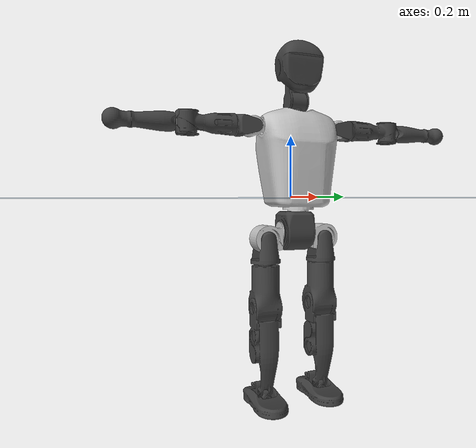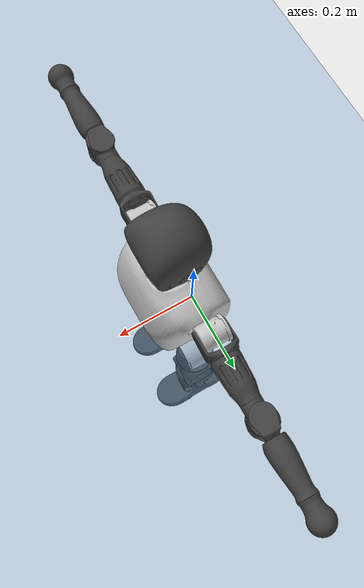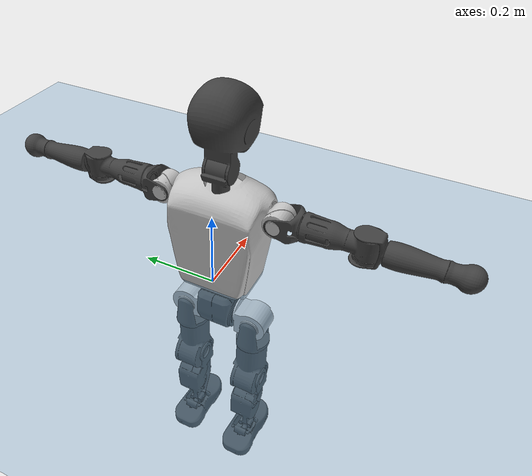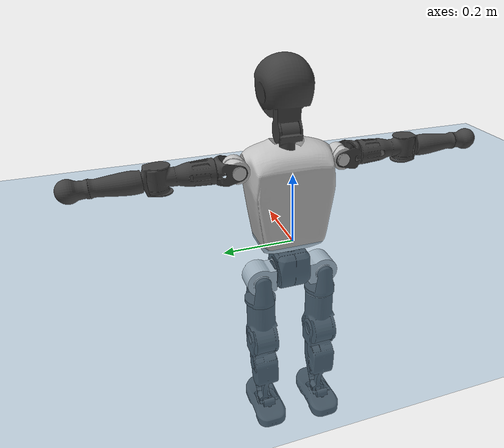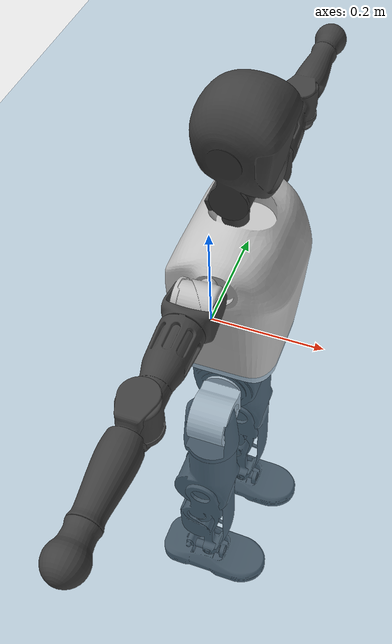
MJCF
<mujoco model="T1">
  <compiler angle="radian" assetdir="assets" balanceinertia="true" inertiafromgeom="false"/>

  <option timestep="0.005" density="1.2" viscosity="2e-05"/>

  <size nkey="1"/>

  <visual>
    <quality shadowsize="8192"/>
    <map shadowclip="0.5"/>
  </visual>

  <default>
    <default class="/">
      <joint armature="0.01" damping="0.01" frictionloss="0.1"/>
      <geom contype="0" conaffinity="0" group="1" solref="-1000 -80"/>
      <site size="0.01 0.005 0.005" group="5"/>
      <general forcelimited="true" biastype="affine" gainprm="25" biasprm="0 -25 -0.6"/>
      <default class="t1">
        <geom rgba="0.25 0.25 0.25 1"/>
        <default class="visual">
          <geom type="mesh" group="2"/>
        </default>
        <default class="collision">
          <geom group="3"/>
        </default>
        <default class="foot">
          <geom size="0.1115 0.05 0.015" type="box" condim="6" group="4" priority="1" solimp="0.015 1 0.015"/>
        </default>
        <default class="reward_collision_sphere">
          <geom group="5" rgba="1 0 0 1"/>
        </default>
      </default>
    </default>
  </default>

  <asset>
    <texture type="skybox" colorspace="auto" name="//unnamed_texture_0" builtin="gradient" rgb1="0.95 0.95 0.95" rgb2="0.95 0.95 0.95" width="100" height="600"/>
    <texture type="2d" colorspace="auto" name="texplane" builtin="checker" rgb1="0.345 0.575 0.748" rgb2="0.345 0.575 0.748" markrgb="1 1 1" width="512" height="512"/>
    <material name="MatPlane" class="/" texture="texplane" texuniform="true" texrepeat="2 2" specular="0.9"/>
    <mesh name="Trunk" class="/" file="Trunk.stl"/>
    <mesh name="H1" class="/" file="H1.stl"/>
    <mesh name="H2" class="/" file="H2.stl"/>
    <mesh name="AL1" class="/" file="AL1.stl"/>
    <mesh name="AL2" class="/" file="AL2.stl"/>
    <mesh name="AL3" class="/" file="AL3.stl"/>
    <mesh name="left_hand_link" class="/" file="left_hand_link.stl"/>
    <mesh name="AR1" class="/" file="AR1.stl"/>
    <mesh name="AR2" class="/" file="AR2.stl"/>
    <mesh name="AR3" class="/" file="AR3.stl"/>
    <mesh name="right_hand_link" class="/" file="right_hand_link.stl"/>
    <mesh name="Waist" class="/" file="Waist.stl"/>
    <mesh name="Hip_Pitch_Left" class="/" file="Hip_Pitch_Left.stl"/>
    <mesh name="Hip_Roll_Left" class="/" file="Hip_Roll_Left.stl"/>
    <mesh name="Hip_Yaw_Left" class="/" file="Hip_Yaw_Left.stl"/>
    <mesh name="Shank_Left" class="/" file="Shank_Left.stl"/>
    <mesh name="Ankle_Cross_Left" class="/" file="Ankle_Cross_Left.stl"/>
    <mesh name="left_foot_link" class="/" file="left_foot_link.stl"/>
    <mesh name="Hip_Pitch_Right" class="/" file="Hip_Pitch_Right.stl"/>
    <mesh name="Hip_Roll_Right" class="/" file="Hip_Roll_Right.stl"/>
    <mesh name="Hip_Yaw_Right" class="/" file="Hip_Yaw_Right.stl"/>
    <mesh name="Shank_Right" class="/" file="Shank_Right.stl"/>
    <mesh name="Ankle_Cross_Right" class="/" file="Ankle_Cross_Right.stl"/>
    <mesh name="right_foot_link" class="/" file="right_foot_link.stl"/>
  </asset>

  <worldbody>
    <geom name="floor" class="/" size="100 100 0.125" type="plane" group="0" material="MatPlane"/>
    <light name="toplight_shadow" class="/" pos="0 0 5" dir="0.0990148 0.0990148 -0.990148" type="directional" ambient="0.04 0.04 0.04" diffuse="0.55 0.55 0.55" specular="0.12 0.12 0.12"/>
    <light name="toplight_fill" class="/" pos="0 0 5" dir="0.0990148 0.0990148 -0.990148" type="directional" castshadow="false" ambient="0.04 0.04 0.04" diffuse="0.3 0.3 0.3" specular="0.08 0.08 0.08"/>
    <body name="trunk" childclass="t1" pos="-0.000209379 -0.00270276 0.00237808" quat="0.999999 -0.000663082 -0.00110047 0.000461257">
      <inertial pos="0.0363934 -0.00150052 0.105221" quat="0.999961 -0.000486474 -0.00883848 0.00059039" mass="7.74168" diaginertia="0.0137651 0.0551896 0.0588612"/>
      <joint name="//unnamed_joint_0" type="free" armature="0" damping="0" frictionloss="0"/>
      <geom name="//unnamed_geom_1" class="visual" rgba="0.76 0.76 0.76 1" mesh="Trunk"/>
      <geom name="//unnamed_geom_2" class="collision" size="0.0653577 0.0871436 0.130715" pos="0.0408075 0 0.119796" type="box"/>
      <geom name="//unnamed_geom_3" class="reward_collision_sphere" size="0.100215" pos="0.0408075 0 0.0998297"/>
      <geom name="//unnamed_geom_4" class="reward_collision_sphere" size="0.0130715" pos="0.0408075 0.0795504 0"/>
      <geom name="//unnamed_geom_5" class="reward_collision_sphere" size="0.0130715" pos="0.0408075 -0.0795504 0"/>
      <geom name="//unnamed_geom_6" class="reward_collision_sphere" size="0.0130715" pos="0.0408075 0.10014 0.179693"/>
      <geom name="//unnamed_geom_7" class="reward_collision_sphere" size="0.0130715" pos="0.0408075 -0.10014 0.179693"/>
      <site name="imu" pos="0.0118939 0.00347324 -0.00400283" size="0.00871436"/>
      <camera name="track" pos="0 -1.87177 0" quat="0.707107 0.707107 0 0" mode="trackcom"/>
      <camera name="ego_camera" pos="0.0829752 0 0.419285" quat="-0.5 -0.5 0.5 0.5"/>
      <body name="H1" pos="0.0445041 0.0024713 0.240016" quat="1 -2.724e-06 -3.52908e-06 2.68481e-06">
        <inertial pos="-0.00371386 -0.00124358 0.0597146" quat="0.760698 -0.0106319 0.0126696 0.648895" mass="0.292642" diaginertia="3.41837e-05 0.000161814 0.000146042"/>
        <joint name="AAHead_yaw" pos="0 0 0" axis="0.00037072 0.00493581 0.999988" stiffness="0.000799548" range="-1.58073 1.51986" armature="0.00754483" damping="0.0164927" frictionloss="0.0977886"/>
        <geom name="//unnamed_geom_8" class="visual" mesh="H1"/>
        <body name="H2" pos="6.78237e-05 -0.0001911 0.0635125" quat="1 -7.1605e-05 7.79723e-05 -2.36979e-05">
          <inertial pos="0.00393982 0.00018186 0.0986084" quat="0.988596 0.104349 -0.0749965 -0.0785173" mass="0.406402" diaginertia="0.000282802 0.00134035 0.00170786"/>
          <joint name="Head_pitch" pos="0 0 0" axis="0.00280699 -0.999989 -0.00363036" range="-1.21774 0.341216" armature="0.0074577" damping="0.0053013" frictionloss="0.0905384"/>
          <geom name="//unnamed_geom_9" class="visual" mesh="H2"/>
          <geom name="//unnamed_geom_10" class="collision" size="0.0697149" pos="0.00680125 0 0.109813"/>
          <geom name="//unnamed_geom_11" class="reward_collision_sphere" size="0.0784293" pos="0.0136025 0 0.0998297"/>
        </body>
      </body>
      <body name="AL1" pos="0.0396691 0.0992474 0.219191" quat="1 9.29916e-05 0.000489776 -0.000100925">
        <inertial pos="-0.00210828 0.0421418 -0.000755386" quat="0.493429 0.499353 -0.50554 0.501601" mass="0.353086" diaginertia="0.000198903 0.000934948 0.000297946"/>
        <joint name="Left_Shoulder_Pitch" pos="0 0 0" axis="-0.000514963 0.999956 -0.0093679" stiffness="0.000161624" range="-3.31142 1.22913" armature="0.00844986" damping="0.0081606" frictionloss="0.0916398"/>
        <geom name="//unnamed_geom_12" class="visual" rgba="0.76 0.76 0.76 1" mesh="AL1"/>
        <body name="AL2" pos="0.00110457 0.0452397 -0.000818376" quat="1 5.8102e-05 6.89344e-06 -0.000109235">
          <inertial pos="0.00291644 0.0337934 -0.000420408" quat="0.488901 0.511219 -0.486466 0.512818" mass="0.107357" diaginertia="5.8707e-05 0.000246728 0.000178658"/>
          <joint name="Left_Shoulder_Roll" pos="0 0 0" axis="-0.999991 0.000613839 0.00422174" range="-1.58526 1.77413" armature="0.00882778" damping="0.00492741" frictionloss="0.0901791"/>
          <geom name="//unnamed_geom_13" class="visual" mesh="AL2"/>
          <body name="AL3" pos="0.00338583 0.0574688 0.00180004" quat="0.999999 -0.00100938 0.000280648 0.00079847">
            <inertial pos="-0.00293628 0.0798514 0.00017933" quat="0.70617 0.708023 -0.00267034 0.00450487" mass="0.692766" diaginertia="0.00189363 0.00885594 0.000613364"/>
            <joint name="Left_Elbow_Pitch" pos="0 0 0" axis="0.000298093 -1 -0.00022457" stiffness="0.00371302" range="-2.27883 2.2644" armature="0.00799615" damping="0.00908144" frictionloss="0.0918172"/>
            <geom name="//unnamed_geom_14" class="visual" mesh="AL3"/>
            <geom name="//unnamed_geom_15" class="collision" size="0.0261431 0.0653577" pos="0 0.0467944 0" quat="0.707105 0.707108 0 0" type="cylinder"/>
            <geom name="//unnamed_geom_16" class="reward_collision_sphere" size="0.0313717"/>
            <body name="left_hand_link" pos="-0.000581415 0.13765 -0.00170402" quat="0.999999 -0.000360014 0.00128259 -0.000160346">
              <inertial pos="-0.000725003 0.100699 0.00256211" quat="0.711507 0.702667 -0.00378221 0.00184732" mass="0.211158" diaginertia="0.00118382 0.00563518 0.000198817"/>
              <joint name="Left_Elbow_Yaw" pos="0 0 0" axis="0.000790971 -1.09104e-05 1" stiffness="0.00999978" range="-2.42354 -0.00027908" armature="0.00896659" damping="0.0101948" frictionloss="0.0856565"/>
              <geom name="//unnamed_geom_17" class="visual" mesh="left_hand_link"/>
              <geom name="//unnamed_geom_18" class="collision" size="0.0261431 0.0762507" pos="0 0.121665 0" quat="0.707105 0.707108 0 0" type="cylinder"/>
              <geom name="//unnamed_geom_19" class="reward_collision_sphere" size="0.0435718"/>
              <geom name="//unnamed_geom_20" class="reward_collision_sphere" size="0.0305003" pos="0 0.102948 0"/>
              <geom name="//unnamed_geom_21" class="reward_collision_sphere" size="0.0305003" pos="0 0.201216 0"/>
            </body>
          </body>
        </body>
      </body>
      <body name="AR1" pos="0.0399822 -0.101172 0.217868" quat="1 -0.000553694 0.000335818 -0.000104387">
        <inertial pos="-0.000229333 -0.0449504 0.00255113" quat="0.502238 0.494178 -0.508392 0.495058" mass="0.345123" diaginertia="0.000194604 0.000881321 0.000285621"/>
        <joint name="Right_Shoulder_Pitch" pos="0 0 0" axis="0.00682407 -0.999926 0.0100821" stiffness="0.00724002" range="-1.17549 3.30894" armature="0.00864739" damping="0.006884" frictionloss="0.0980344"/>
        <geom name="//unnamed_geom_22" class="visual" rgba="0.76 0.76 0.76 1" mesh="AR1"/>
        <body name="AR2" pos="-0.000447053 -0.0443223 -0.000211648" quat="1 0.000455999 -0.000154666 0.000409569">
          <inertial pos="0.000871315 -0.0350158 -0.0010621" quat="0.516714 0.486066 -0.510416 0.486027" mass="0.107613" diaginertia="6.00815e-05 0.000254538 0.000174915"/>
          <joint name="Right_Shoulder_Roll" pos="0 0 0" axis="-0.999893 -0.00680192 0.012983" range="-1.73032 1.56402" armature="0.00757813" damping="0.00711431" frictionloss="0.0912169"/>
          <geom name="//unnamed_geom_23" class="visual" mesh="AR2"/>
          <body name="AR3" pos="0.000235415 -0.0594478 0.00229511" quat="0.999999 0.000278805 -0.0006009 0.00107386">
            <inertial pos="0.0022023 -0.0800055 0.00277468" quat="0.707769 0.706444 2.36464e-05 -0.000275032" mass="0.655952" diaginertia="0.00175987 0.0089638 0.000598874"/>
            <joint name="Right_Elbow_Pitch" pos="0 0 0" axis="0.000596818 1 0.000158338" range="-2.25048 2.25812" armature="0.00853657" damping="0.00672457" frictionloss="0.0978118"/>
            <geom name="//unnamed_geom_24" class="visual" mesh="AR3"/>
            <geom name="//unnamed_geom_25" class="collision" size="0.0261431 0.0653577" pos="0 -0.0467944 0" quat="0.707105 0.707108 0 0" type="cylinder"/>
            <geom name="//unnamed_geom_26" class="reward_collision_sphere" size="0.0313717"/>
            <body name="right_hand_link" pos="-0.00249979 -0.13894 -0.00201042" quat="1 7.09687e-05 4.18524e-06 0.000166512">
              <inertial pos="-0.000440062 -0.102941 0.00180272" quat="0.705373 0.708832 -0.00216618 0.000561733" mass="0.216596" diaginertia="0.00122866 0.0060409 0.000218251"/>
              <joint name="Right_Elbow_Yaw" pos="0 0 0" axis="-0.00964604 0.00532059 0.999939" range="0.0111221 2.43445" armature="0.00842131" damping="0.00479273" frictionloss="0.0934573"/>
              <geom name="//unnamed_geom_27" class="visual" mesh="right_hand_link"/>
              <geom name="//unnamed_geom_28" class="collision" size="0.0261431 0.0762507" pos="0 -0.121665 0" quat="0.707105 0.707108 0 0" type="cylinder"/>
              <geom name="//unnamed_geom_29" class="reward_collision_sphere" size="0.0435718"/>
              <geom name="//unnamed_geom_30" class="reward_collision_sphere" size="0.0305003" pos="0 -0.102948 0"/>
              <geom name="//unnamed_geom_31" class="reward_collision_sphere" size="0.0305003" pos="0 -0.201216 0"/>
            </body>
          </body>
        </body>
      </body>
      <body name="Waist" pos="0.0408543 -0.00171466 -0.115382" quat="0.999999 0.00109487 -0.000591889 -0.00118483">
        <inertial pos="-0.00147105 0.00172942 0.00530407" quat="0.983408 0.0105901 -0.181003 -0.00582559" mass="1.66261" diaginertia="0.000790249 0.00385989 0.00479422"/>
        <joint name="Waist" pos="0 0 0" axis="0.00645512 -0.00605601 0.999961" stiffness="0.0015703" range="-1.56985 1.54978" armature="0.00858447" damping="0.0170291" frictionloss="0.0876121"/>
        <geom name="//unnamed_geom_32" class="visual" mesh="Waist"/>
        <body name="Hip_Pitch_Left" pos="0.000972256 0.0962804 0.00158414" quat="1 9.85084e-05 5.85971e-05 0.000108473">
          <inertial pos="0.00335551 -0.0070042 -0.0184185" quat="0.976789 0.212993 0.0218147 -0.00637368" mass="0.68613" diaginertia="0.000258814 0.00110212 0.00127752"/>
          <joint name="Left_Hip_Pitch" pos="0 0 0" axis="-0.00757348 0.999964 -0.00394083" stiffness="0.0133974" range="-1.79329 1.59418" armature="0.00934632" damping="0.0110545" frictionloss="0.0882978"/>
          <geom name="//unnamed_geom_33" class="visual" rgba="0.76 0.76 0.76 1" mesh="Hip_Pitch_Left"/>
          <body name="Hip_Roll_Left" pos="-0.00163198 -0.0013805 -0.0221902" quat="1 0.000170163 0.000312289 0.000183476">
            <inertial pos="0.0006525 -0.00254094 -0.0544316" quat="0.707263 -0.00666457 -0.0061792 0.706892" mass="0.248062" diaginertia="0.000238072 0.00102367 0.000511565"/>
            <joint name="Left_Hip_Roll" pos="0 0 0" axis="-0.999995 0.00205244 -0.00227163" stiffness="0.000347465" range="-1.54661 0.226257" armature="0.00824916" damping="0.00110347" frictionloss="0.0979053"/>
            <geom name="//unnamed_geom_34" class="visual" mesh="Hip_Roll_Left"/>
            <geom name="//unnamed_geom_35" class="reward_collision_sphere" size="0.047929"/>
            <body name="Hip_Yaw_Left" pos="0.0015044 -0.00196695 -0.0803909" quat="1 -1.19319e-05 0.000192578 -0.000820749">
              <inertial pos="-0.00549342 -0.00112849 -0.0915488" quat="0.695893 -0.0334706 -0.0308325 0.716703" mass="1.41129" diaginertia="0.00362941 0.0175411 0.00247721"/>
              <joint name="Left_Hip_Yaw" pos="0 0 0" axis="-0.0040729 0.00247398 -0.999989" range="-1.05581 1.02469" armature="0.00878368" damping="0.00689629" frictionloss="0.0866328"/>
              <geom name="//unnamed_geom_36" class="visual" mesh="Hip_Yaw_Left"/>
              <geom name="//unnamed_geom_37" class="collision" size="0.0435718 0.0697149" type="cylinder"/>
              <body name="Shank_Left" pos="-0.00877185 -1.74813e-05 -0.134701" quat="1 -7.3894e-05 -5.96889e-05 -0.000222387">
                <inertial pos="-0.00651451 0.00105696 -0.124283" quat="0.99735 0.00846363 -0.0228042 0.0685592" mass="1.12286" diaginertia="0.00511377 0.0236772 0.00176083"/>
                <joint name="Left_Knee_Pitch" pos="0 0 0" axis="-0.000451326 1 0.000702076" range="-0.000939162 2.30216" armature="0.00977774" damping="0" frictionloss="0.0863478"/>
                <geom name="//unnamed_geom_38" class="visual" mesh="Shank_Left"/>
                <geom name="//unnamed_geom_39" class="collision" size="0.0435718 0.0653577" pos="0 0 -0.119796" type="cylinder"/>
                <geom name="//unnamed_geom_40" class="reward_collision_sphere" size="0.0566434"/>
                <body name="Ankle_Cross_Left" pos="0.0028975 -0.000104921 -0.278955" quat="1 0.000464274 -0.000274068 0.000273667">
                  <inertial pos="-0.00492421 -0.00127679 -0.00667455" quat="0.441362 0.550638 0.552336 0.44376" mass="0.0478353" diaginertia="4.14055e-06 1.84567e-05 1.12864e-05"/>
                  <joint name="Left_Ankle_Pitch" pos="0 0 0" axis="-0.000589638 1 -0.000753513" range="-0.86727 0.346818" armature="0.00977172" damping="0.0226913" frictionloss="0.0881969"/>
                  <geom name="//unnamed_geom_41" class="visual" mesh="Ankle_Cross_Left"/>
                  <body name="left_foot_link" pos="-0.000700308 -0.00271413 -0.0101196" quat="0.999999 0.000952384 -0.000254825 0.000691019">
                    <inertial pos="-0.00262042 -0.00120285 -0.00804684" quat="-0.0100037 0.618912 -0.00904785 0.785345" mass="0.471183" diaginertia="0.000399905 0.00170825 0.00222443"/>
                    <joint name="Left_Ankle_Roll" pos="0 0 0" axis="-0.999913 -0.00317159 0.0127802" stiffness="0.000196684" range="-0.449789 0.480143" armature="0.00862308" damping="0" frictionloss="0.0913239"/>
                    <geom name="//unnamed_geom_42" class="visual" mesh="left_foot_link"/>
                    <geom name="left_foot" class="foot" size="0.108359 0.0387833 0.0141192" pos="0.00680125 0 -0.0149745"/>
                    <geom name="//unnamed_geom_44" class="reward_collision_sphere" size="0.0453147" pos="0.00680125 0 -0.0149745"/>
                    <geom name="//unnamed_geom_45" class="reward_collision_sphere" size="0.0261431" pos="0.0646118 -0.0215254 -0.0149745"/>
                    <geom name="//unnamed_geom_46" class="reward_collision_sphere" size="0.0261431" pos="-0.0476087 -0.0215254 -0.0149745"/>
                    <site name="left_foot" class="foot" pos="0.00680125 0 -0.0149745" size="0.00871436"/>
                  </body>
                </body>
              </body>
            </body>
          </body>
        </body>
        <body name="Hip_Pitch_Right" pos="-0.00026326 -0.100542 -0.000424859" quat="1 -0.00035236 -0.000210947 -0.000154857">
          <inertial pos="-0.00246079 0.0043314 -0.017633" quat="0.97317 -0.229425 0.0172981 -0.00209221" mass="0.673813" diaginertia="0.000269927 0.0010782 0.00123241"/>
          <joint name="Right_Hip_Pitch" pos="0 0 0" axis="0.00158055 -0.999989 0.00445613" range="-1.55212 1.75863" armature="0.0086779" damping="0" frictionloss="0.0884274"/>
          <geom name="//unnamed_geom_47" class="visual" rgba="0.76 0.76 0.76 1" mesh="Hip_Pitch_Right"/>
          <body name="Hip_Roll_Right" pos="-0.0028437 -0.000366657 -0.020604" quat="1 -0.000184612 0.000910759 0.000317106">
            <inertial pos="-0.00108283 -0.000581974 -0.0512561" quat="0.716027 -0.00488214 -0.0101169 0.697982" mass="0.259075" diaginertia="0.000265308 0.00111048 0.000513757"/>
            <joint name="Right_Hip_Roll" pos="0 0 0" axis="-0.999987 0.00491275 0.00163918" stiffness="0.000874599" range="-0.179502 1.5765" armature="0.00840298" damping="0.00534744" frictionloss="0.0965223"/>
            <geom name="//unnamed_geom_48" class="visual" mesh="Hip_Roll_Right"/>
            <geom name="//unnamed_geom_49" class="reward_collision_sphere" size="0.047929"/>
            <body name="Hip_Yaw_Right" pos="-0.00156542 0.000740155 -0.0849883" quat="1 0.000278911 -0.000200384 -0.000238842">
              <inertial pos="-0.00402131 8.76857e-05 -0.0874688" quat="0.713227 -0.0336118 -0.0343173 0.699285" mass="1.44115" diaginertia="0.00389579 0.0184846 0.00266965"/>
              <joint name="Right_Hip_Yaw" pos="0 0 0" axis="0.000871532 -0.00272699 -0.999996" range="-1.01359 0.996374" armature="0.00826327" damping="0.0212685" frictionloss="0.0880354"/>
              <geom name="//unnamed_geom_50" class="visual" mesh="Hip_Yaw_Right"/>
              <geom name="//unnamed_geom_51" class="collision" size="0.0435718 0.0697149" type="cylinder"/>
              <body name="Shank_Right" pos="-0.0115061 -0.000279138 -0.136254" quat="1 2.29261e-05 -1.11949e-05 -2.25537e-05">
                <inertial pos="-0.00349622 -0.002873 -0.122087" quat="0.998834 -0.00774538 -0.0312974 -0.0359259" mass="1.21847" diaginertia="0.00509226 0.0250025 0.00187318"/>
                <joint name="Right_Knee_Pitch" pos="0 0 0" axis="-0.000487801 -0.999959 0.00901394" range="-2.39526 0.00766127" armature="0.00911061" damping="0.0104527" frictionloss="0.0912589"/>
                <geom name="//unnamed_geom_52" class="visual" mesh="Shank_Right"/>
                <geom name="//unnamed_geom_53" class="collision" size="0.0435718 0.0653577" pos="0 0 -0.119796" type="cylinder"/>
                <geom name="//unnamed_geom_54" class="reward_collision_sphere" size="0.0566434"/>
                <body name="Ankle_Cross_Right" pos="-0.00121046 -0.00141868 -0.282252" quat="1 1.22384e-05 -3.52551e-05 -0.00014793">
                  <inertial pos="-0.00307769 0.00167441 -0.00791175" quat="0.442557 0.55111 0.551539 0.442974" mass="0.0474719" diaginertia="4.38538e-06 1.80666e-05 1.16848e-05"/>
                  <joint name="Right_Ankle_Pitch" pos="0 0 0" axis="0.00744234 -0.999918 -0.0104212" range="-0.313682 0.820553" armature="0.00866399" damping="0.0141812" frictionloss="0.0863269"/>
                  <geom name="//unnamed_geom_55" class="visual" mesh="Ankle_Cross_Right"/>
                  <body name="right_foot_link" pos="0.00108284 0.00160327 -0.0126219" quat="1 1.24603e-06 6.57341e-05 -6.72812e-05">
                    <inertial pos="-1.78165e-05 0.00255442 -0.0116484" quat="0.0119304 0.625519 0.00104944 0.780117" mass="0.43557" diaginertia="0.000377451 0.00165641 0.00203344"/>
                    <joint name="Right_Ankle_Roll" pos="0 0 0" axis="-0.999998 -0.00177416 0.000781214" range="-0.490559 0.493888" armature="0.00768873" damping="0" frictionloss="0.0969695"/>
                    <geom name="//unnamed_geom_56" class="visual" mesh="right_foot_link"/>
                    <geom name="right_foot" class="foot" size="0.0984105 0.039147 0.0142346" pos="0.00680125 0 -0.0149745"/>
                    <geom name="//unnamed_geom_58" class="reward_collision_sphere" size="0.0348575"/>
                    <geom name="//unnamed_geom_59" class="reward_collision_sphere" size="0.0261431" pos="0.00680125 0 -0.0149745"/>
                    <geom name="//unnamed_geom_60" class="reward_collision_sphere" size="0.0261431" pos="0.0646118 0.0215254 -0.0149745"/>
                    <geom name="//unnamed_geom_61" class="reward_collision_sphere" size="0.0261431" pos="-0.0476087 0.0215254 -0.0149745"/>
                    <site name="right_foot" class="foot" pos="0.00680125 0 -0.0149745" size="0.00871436"/>
                  </body>
                </body>
              </body>
            </body>
          </body>
        </body>
      </body>
    </body>
  </worldbody>

  <contact>
    <pair class="/" geom1="floor" geom2="left_foot" name="//unnamed_contact_0"/>
    <pair class="/" geom1="floor" geom2="right_foot" name="//unnamed_contact_1"/>
  </contact>

  <actuator>
    <general name="AAHead_yaw" class="/" joint="AAHead_yaw" forcerange="-6.12847 6.12847" gainprm="21.37" biasprm="0 -21.37 -0.529776"/>
    <general name="Head_pitch" class="/" joint="Head_pitch" forcerange="-6.22134 6.22134" gainprm="21.37" biasprm="0 -21.37 -0.529776"/>
    <general name="Left_Shoulder_Pitch" class="/" joint="Left_Shoulder_Pitch" forcerange="-14.1827 14.1827" gainprm="21.37" biasprm="0 -21.37 -0.529776"/>
    <general name="Left_Shoulder_Roll" class="/" joint="Left_Shoulder_Roll" forcerange="-14.0144 14.0144" gainprm="21.37" biasprm="0 -21.37 -0.529776"/>
    <general name="Left_Elbow_Pitch" class="/" joint="Left_Elbow_Pitch" forcerange="-16.9521 16.9521" gainprm="21.37" biasprm="0 -21.37 -0.529776"/>
    <general name="Left_Elbow_Yaw" class="/" joint="Left_Elbow_Yaw" forcerange="-15.6351 15.6351" gainprm="21.37" biasprm="0 -21.37 -0.529776"/>
    <general name="Right_Shoulder_Pitch" class="/" joint="Right_Shoulder_Pitch" forcerange="-16.3204 16.3204" gainprm="21.37" biasprm="0 -21.37 -0.529776"/>
    <general name="Right_Shoulder_Roll" class="/" joint="Right_Shoulder_Roll" forcerange="-17.0281 17.0281" gainprm="21.37" biasprm="0 -21.37 -0.529776"/>
    <general name="Right_Elbow_Pitch" class="/" joint="Right_Elbow_Pitch" forcerange="-15.074 15.074" gainprm="21.37" biasprm="0 -21.37 -0.529776"/>
    <general name="Right_Elbow_Yaw" class="/" joint="Right_Elbow_Yaw" forcerange="-16.0608 16.0608" gainprm="21.37" biasprm="0 -21.37 -0.529776"/>
    <general name="Waist" class="/" joint="Waist" forcerange="-23.707 23.707" gainprm="21.37" biasprm="0 -21.37 -0.529776"/>
    <general name="Left_Hip_Pitch" class="/" joint="Left_Hip_Pitch" forcerange="-37.9284 37.9284" gainprm="21.37" biasprm="0 -21.37 -0.529776"/>
    <general name="Left_Hip_Roll" class="/" joint="Left_Hip_Roll" forcerange="-26.2308 26.2308" gainprm="21.37" biasprm="0 -21.37 -0.529776"/>
    <general name="Left_Hip_Yaw" class="/" joint="Left_Hip_Yaw" forcerange="-24.6797 24.6797" gainprm="21.37" biasprm="0 -21.37 -0.529776"/>
    <general name="Left_Knee_Pitch" class="/" joint="Left_Knee_Pitch" forcerange="-50.9395 50.9395" gainprm="21.37" biasprm="0 -21.37 -0.529776"/>
    <general name="Left_Ankle_Pitch" class="/" joint="Left_Ankle_Pitch" forcerange="-17.4081 17.4081" gainprm="21.37" biasprm="0 -21.37 -0.529776"/>
    <general name="Left_Ankle_Roll" class="/" joint="Left_Ankle_Roll" forcerange="-12.9114 12.9114" gainprm="21.37" biasprm="0 -21.37 -0.529776"/>
    <general name="Right_Hip_Pitch" class="/" joint="Right_Hip_Pitch" forcerange="-43.2482 43.2482" gainprm="21.37" biasprm="0 -21.37 -0.529776"/>
    <general name="Right_Hip_Roll" class="/" joint="Right_Hip_Roll" forcerange="-28.5964 28.5964" gainprm="21.37" biasprm="0 -21.37 -0.529776"/>
    <general name="Right_Hip_Yaw" class="/" joint="Right_Hip_Yaw" forcerange="-26.1128 26.1128" gainprm="21.37" biasprm="0 -21.37 -0.529776"/>
    <general name="Right_Knee_Pitch" class="/" joint="Right_Knee_Pitch" forcerange="-54.5439 54.5439" gainprm="21.37" biasprm="0 -21.37 -0.529776"/>
    <general name="Right_Ankle_Pitch" class="/" joint="Right_Ankle_Pitch" forcerange="-15.747 15.747" gainprm="21.37" biasprm="0 -21.37 -0.529776"/>
    <general name="Right_Ankle_Roll" class="/" joint="Right_Ankle_Roll" forcerange="-14.337 14.337" gainprm="21.37" biasprm="0 -21.37 -0.529776"/>
  </actuator>

  <sensor>
    <gyro site="imu" name="imu_angular_velocity"/>
    <velocimeter site="imu" name="imu_linear_velocity"/>
    <framelinvel objtype="site" objname="left_foot" name="left_foot_global_linear_velocity"/>
    <framelinvel objtype="site" objname="right_foot" name="right_foot_global_linear_velocity"/>
  </sensor>

  <keyframe>
    <key name="home" qpos="0 0 0.6385 1 0 0 0 0 0 0 1.4 0 -0.4 0 -1.4 0 0.4 0 -0.4 0 0 0.8 -0.4 0 0.4 0 0 -0.8 0.4 0"/>
  </keyframe>
</mujoco>
